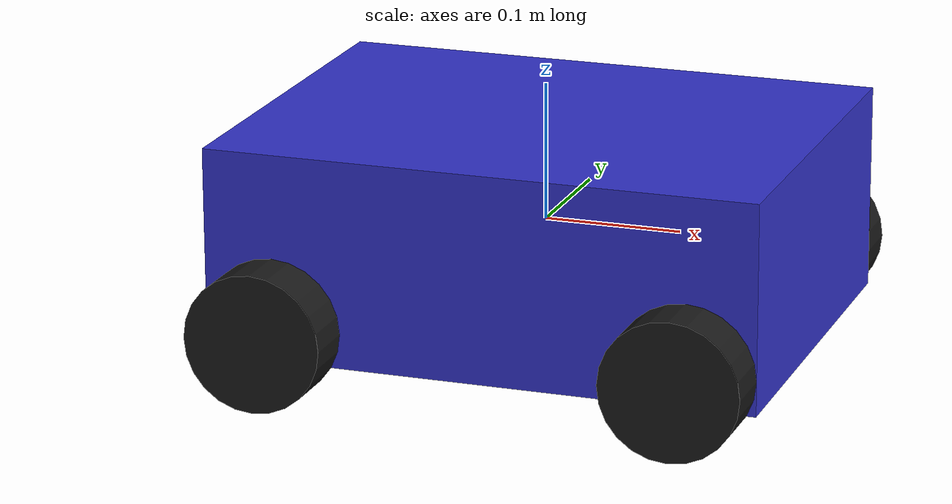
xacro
<?xml version="1.0"?>
<robot name="d3bouur" xmlns:xacro="http://www.ros.org/wiki/xacro">

  <link name="base_link">
    <visual>
      <geometry>
        <box size="0.4 0.3 0.15"/>
      </geometry>
      <material name="blue">
        <color rgba="0.2 0.2 0.8 1"/>
      </material>
    </visual>
    <collision>
      <geometry>
        <box size="0.4 0.3 0.15"/>
      </geometry>
    </collision>
    <inertial>
      <mass value="2.0"/>
      <inertia ixx="0.01" ixy="0" ixz="0" iyy="0.01" iyz="0" izz="0.01"/>
    </inertial>
  </link>

  <xacro:macro name="wheel" params="name x y">
    <link name="${name}_wheel">
      <visual>
        <geometry>
          <cylinder radius="0.05" length="0.04"/>
        </geometry>
        <material name="black">
          <color rgba="0.1 0.1 0.1 1"/>
        </material>
      </visual>
      <collision>
        <geometry>
          <cylinder radius="0.05" length="0.04"/>
        </geometry>
      </collision>
      <inertial>
        <mass value="0.2"/>
        <inertia ixx="0.0001" ixy="0" ixz="0" iyy="0.0001" iyz="0" izz="0.0001"/>
      </inertial>
    </link>

    <joint name="${name}_wheel_joint" type="continuous">
      <parent link="base_link"/>
      <child link="${name}_wheel"/>
      <origin xyz="${x} ${y} -0.05" rpy="1.5708 0 0"/>
      <axis xyz="0 0 1"/>
    </joint>
  </xacro:macro>

  <xacro:wheel name="front_left"  x="0.15"  y="0.17"/>
  <xacro:wheel name="front_right" x="0.15"  y="-0.17"/>
  <xacro:wheel name="rear_left"   x="-0.15" y="0.17"/>
  <xacro:wheel name="rear_right"  x="-0.15" y="-0.17"/>

</robot>
